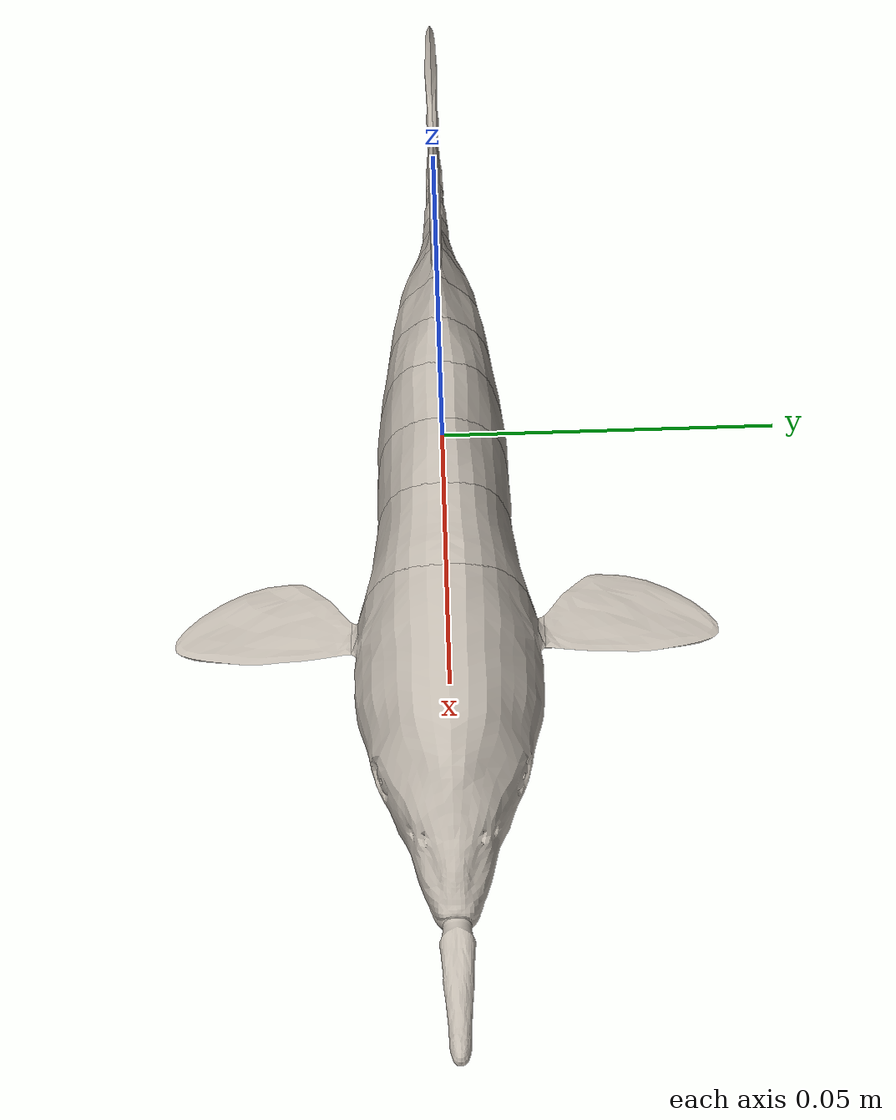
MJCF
<mujoco model="Gnathonemus_petersii">
  <compiler angle="degree" meshdir="assets/meshes" texturedir="assets/textures" inertiafromgeom="false" autolimits="true" />
  <option timestep="0.001" gravity="0 0 -9.81" density="1000" viscosity="0.001" integrator="implicitfast" solver="Newton" iterations="30" />
  <size nuser_body="1" />
  <visual>
    <global offwidth="1920" offheight="1080" azimuth="90" elevation="-8" />
    <quality shadowsize="2048" offsamples="4" />
    <headlight ambient="0.45 0.45 0.45" diffuse="0.65 0.65 0.65" specular="0.15 0.15 0.15" />
    <rgba haze="0.05 0.16 0.19 1" />
    <map znear="0.002" zfar="20" fogstart="1" fogend="5" />
  </visual>
  <statistic center="0 0 0" extent="0.25" meansize="0.008" />
  <asset>
    <texture name="water" type="skybox" builtin="gradient" rgb1="0.025 0.1 0.13" rgb2="0.12 0.26 0.28" width="512" height="3072" />
    <texture name="diffuse" type="2d" file="fish_atlas.png" />
    <material name="fish_material" texture="diffuse" specular="0.12" shininess="0.2" reflectance="0.03" />
    <mesh name="body_00_head" file="body_00_head.obj" smoothnormal="true" />
    <mesh name="body_01" file="body_01.obj" smoothnormal="true" />
    <mesh name="body_02" file="body_02.obj" smoothnormal="true" />
    <mesh name="body_03" file="body_03.obj" smoothnormal="true" />
    <mesh name="body_04" file="body_04.obj" smoothnormal="true" />
    <mesh name="body_05" file="body_05.obj" smoothnormal="true" />
    <mesh name="body_06" file="body_06.obj" smoothnormal="true" />
    <mesh name="body_07" file="body_07.obj" smoothnormal="true" />
    <mesh name="body_08" file="body_08.obj" smoothnormal="true" />
    <mesh name="body_09" file="body_09.obj" smoothnormal="true" />
    <mesh name="body_10" file="body_10.obj" smoothnormal="true" />
    <mesh name="body_11" file="body_11.obj" smoothnormal="true" />
    <mesh name="body_12" file="body_12.obj" smoothnormal="true" />
    <mesh name="body_13" file="body_13.obj" smoothnormal="true" />
    <mesh name="chin_0" file="chin_0.obj" smoothnormal="true" />
    <mesh name="fin_pecL_0" file="fin_pecL_0.obj" smoothnormal="true" />
    <mesh name="fin_pecR_0" file="fin_pecR_0.obj" smoothnormal="true" />
    <mesh name="fin_pelL_0" file="fin_pelL_0.obj" smoothnormal="true" />
    <mesh name="fin_pelR_0" file="fin_pelR_0.obj" smoothnormal="true" />
    <mesh name="fin_dorsal_0" file="fin_dorsal_0.obj" smoothnormal="true" />
    <mesh name="fin_anal_0" file="fin_anal_0.obj" smoothnormal="true" />
    <mesh name="fin_caudal_0" file="fin_caudal_0.obj" smoothnormal="true" />
  </asset>
  <worldbody>
    <light name="key" pos="0.1 0.4 0.5" dir="-0.2 -0.6 -1" diffuse="0.85 0.85 0.8" castshadow="true" />
    <light name="fill" pos="-0.2 -0.3 0.1" dir="0.3 0.7 -0.4" diffuse="0.5 0.6 0.65" castshadow="false" />
    <camera name="fixed_side" pos="0 0.34 0.035" xyaxes="-1 0 0 0 0 1" fovy="40" />
    <body name="body_00_head" pos="0 0 0" gravcomp="1" user="1.751050597e-05">
      <inertial pos="0.05433045629 -5.202310969e-08 -0.0004100051152" mass="0.01751050597" diaginertia="1.413400013e-06 2.398040128e-06 2.738390535e-06" quat="0.7061388412 0.7061493281 0.03688083314 -0.03688993819" />
      <freejoint name="root_free" />
      <site name="imu" size="0.001" rgba="0 0 0 0" />
      <camera name="tracking_side" mode="trackcom" pos="0 0.34 0.035" xyaxes="-1 0 0 0 0 1" fovy="40" />
      <camera name="tracking_top" mode="trackcom" pos="0 0 0.34" xyaxes="-1 0 0 0 -1 0" fovy="40" />
      <camera name="fin_closeup" mode="trackcom" pos="-0.04 0.15 0.01" xyaxes="-1 0 0 0 0 1" fovy="35" />
      <geom name="visual_body_00_head" type="mesh" mesh="body_00_head" material="fish_material" contype="0" conaffinity="0" group="1" mass="0" />
      <geom name="fluid_body_00_head" type="ellipsoid" size="0.02305520364 0.01582357285 0.01237743221" pos="0.05433045629 -5.202310969e-08 -0.0004100051152" quat="0.7061388412 0.7061493281 0.03688083314 -0.03688993819" mass="0" group="3" contype="2" conaffinity="1" rgba="0.2 0.7 0.8 0.25" fluidshape="ellipsoid" fluidcoef="0.5 0.08 1.5 1 1" />
      <body name="body_01" pos="0.05887063823 0 -0.0005302909266" gravcomp="1" user="8.150289643e-06">
        <inertial pos="-0.02646965524 -1.88852711e-07 0.001001682928" mass="0.008150289643" diaginertia="3.886249974e-07 8.349658073e-07 9.171498856e-07" quat="0.7185434633 8.266756421e-05 -0.6954820444 -0.0001024729196" />
        <joint name="j_body_01_yaw" type="hinge" axis="0 0 1" range="-0.7161972439 0.7161972439" stiffness="0.003" damping="0.00015" armature="1e-08" solreflimit="0.003 1" margin="1e-05" />
        <joint name="j_body_01_pitch" type="hinge" axis="0 1 0" range="-0.5 0.5" stiffness="0.003" damping="0.00015" armature="1e-08" solreflimit="0.003 1" margin="1e-05" />
        <geom name="visual_body_01" type="mesh" mesh="body_01" material="fish_material" contype="0" conaffinity="0" group="1" mass="0" />
        <geom name="fluid_body_01" type="ellipsoid" size="0.02045076566 0.01201727213 0.009695201977" pos="-0.02646965524 -1.88852711e-07 0.001001682928" quat="0.7185434633 8.266756421e-05 -0.6954820444 -0.0001024729196" mass="0" group="3" contype="2" conaffinity="1" rgba="0.2 0.7 0.8 0.25" fluidshape="ellipsoid" fluidcoef="0.5 0.08 1.5 1 1" />
        <body name="body_02" pos="-0.009465827681 0 0.000690746208" gravcomp="1" user="7.116031402e-06">
          <inertial pos="-0.0298238466 3.226461012e-07 0.0001999979644" mass="0.007116031402" diaginertia="2.728979815e-07 8.100001986e-07 8.594840869e-07" quat="0.0001143331161 -0.7059705756 7.111777698e-05 0.7082411512" />
          <joint name="j_body_02_yaw" type="hinge" axis="0 0 1" range="-0.7161972439 0.7161972439" stiffness="0.003" damping="0.00015" armature="1e-08" solreflimit="0.003 1" margin="1e-05" />
          <joint name="j_body_02_pitch" type="hinge" axis="0 1 0" range="-0.5 0.5" stiffness="0.003" damping="0.00015" armature="1e-08" solreflimit="0.003 1" margin="1e-05" />
          <geom name="visual_body_02" type="mesh" mesh="body_02" material="fish_material" contype="0" conaffinity="0" group="1" mass="0" />
          <geom name="fluid_body_02" type="ellipsoid" size="0.02215057303 0.01064232166 0.008859441792" pos="-0.0298238466 3.226461012e-07 0.0001999979644" quat="0.0001143331161 -0.7059705756 7.111777698e-05 0.7082411512" mass="0" group="3" contype="2" conaffinity="1" rgba="0.2 0.7 0.8 0.25" fluidshape="ellipsoid" fluidcoef="0.5 0.08 1.5 1 1" />
          <body name="body_03" pos="-0.009465827681 0 0.0001540624832" gravcomp="1" user="7.020405512e-06">
            <inertial pos="-0.03205427488 -3.778255366e-09 5.361308894e-05" mass="0.007020405512" diaginertia="2.623823513e-07 8.232361381e-07 8.819704055e-07" quat="0.7105558958 1.299922983e-06 -0.7036407599 1.878005684e-06" />
            <joint name="j_body_03_yaw" type="hinge" axis="0 0 1" range="-0.7161972439 0.7161972439" stiffness="0.003" damping="0.00015" armature="1e-08" solreflimit="0.003 1" margin="1e-05" />
            <joint name="j_body_03_pitch" type="hinge" axis="0 1 0" range="-0.5 0.5" stiffness="0.003" damping="0.00015" armature="1e-08" solreflimit="0.003 1" margin="1e-05" />
            <geom name="visual_body_03" type="mesh" mesh="body_03" material="fish_material" contype="0" conaffinity="0" group="1" mass="0" />
            <geom name="fluid_body_03" type="ellipsoid" size="0.02266708185 0.0106935104 0.008515870905" pos="-0.03205427488 -3.778255366e-09 5.361308894e-05" quat="0.7105558958 1.299922983e-06 -0.7036407599 1.878005684e-06" mass="0" group="3" contype="2" conaffinity="1" rgba="0.2 0.7 0.8 0.25" fluidshape="ellipsoid" fluidcoef="0.5 0.08 1.5 1 1" />
            <body name="body_04" pos="-0.009465827681 0 3.856462767e-06" gravcomp="1" user="5.995996774e-06">
              <inertial pos="-0.03344516657 2.048546465e-15 -0.0003335497231" mass="0.005995996774" diaginertia="2.008002115e-07 6.858668759e-07 7.366033597e-07" quat="7.141665434e-13 -0.7061969079 1.072666707e-12 0.7080154852" />
              <joint name="j_body_04_yaw" type="hinge" axis="0 0 1" range="-0.7161972439 0.7161972439" stiffness="0.003" damping="0.00015" armature="1e-08" solreflimit="0.003 1" margin="1e-05" />
              <joint name="j_body_04_pitch" type="hinge" axis="0 1 0" range="-0.5 0.5" stiffness="0.003" damping="0.00015" armature="1e-08" solreflimit="0.003 1" margin="1e-05" />
              <geom name="visual_body_04" type="mesh" mesh="body_04" material="fish_material" contype="0" conaffinity="0" group="1" mass="0" />
              <geom name="fluid_body_04" type="ellipsoid" size="0.02256920534 0.01024094384 0.007910012584" pos="-0.03344516657 2.048546465e-15 -0.0003335497231" quat="7.141665434e-13 -0.7061969079 1.072666707e-12 0.7080154852" mass="0" group="3" contype="2" conaffinity="1" rgba="0.2 0.7 0.8 0.25" fluidshape="ellipsoid" fluidcoef="0.5 0.08 1.5 1 1" />
              <body name="body_05" pos="-0.009465827681 0 -6.182555981e-05" gravcomp="1" user="4.818897285e-06">
                <inertial pos="-0.0343101073 -1.132711005e-19 -0.0004289549327" mass="0.004818897285" diaginertia="1.36552486e-07 4.775575144e-07 5.07978662e-07" quat="2.454850954e-16 0.7096492864 2.062958452e-16 -0.7045551009" />
                <joint name="j_body_05_yaw" type="hinge" axis="0 0 1" range="-0.7161972439 0.7161972439" stiffness="0.003" damping="0.00015" armature="1e-08" solreflimit="0.003 1" margin="1e-05" />
                <joint name="j_body_05_pitch" type="hinge" axis="0 1 0" range="-0.5 0.5" stiffness="0.003" damping="0.00015" armature="1e-08" solreflimit="0.003 1" margin="1e-05" />
                <geom name="visual_body_05" type="mesh" mesh="body_05" material="fish_material" contype="0" conaffinity="0" group="1" mass="0" />
                <geom name="fluid_body_05" type="ellipsoid" size="0.02098678161 0.009307222978 0.007420240648" pos="-0.0343101073 -1.132711005e-19 -0.0004289549327" quat="2.454850954e-16 0.7096492864 2.062958452e-16 -0.7045551009" mass="0" group="3" contype="2" conaffinity="1" rgba="0.2 0.7 0.8 0.25" fluidshape="ellipsoid" fluidcoef="0.5 0.08 1.5 1 1" />
                <body name="body_06" pos="-0.009465827681 0 0.0002242333971" gravcomp="1" user="3.596769246e-06">
                  <inertial pos="-0.03507127701 -3.803389518e-14 -0.0007418514269" mass="0.003596769246" diaginertia="8.133801511e-08 2.99593817e-07 3.003556649e-07" quat="-0.7029511089 6.967924916e-11 0.7112381729 7.711114057e-11" />
                  <joint name="j_body_06_yaw" type="hinge" axis="0 0 1" range="-0.7161972439 0.7161972439" stiffness="0.003" damping="0.00015" armature="1e-08" solreflimit="0.003 1" margin="1e-05" />
                  <joint name="j_body_06_pitch" type="hinge" axis="0 1 0" range="-0.5 0.5" stiffness="0.003" damping="0.00015" armature="1e-08" solreflimit="0.003 1" margin="1e-05" />
                  <geom name="visual_body_06" type="mesh" mesh="body_06" material="fish_material" contype="0" conaffinity="0" group="1" mass="0" />
                  <geom name="fluid_body_06" type="ellipsoid" size="0.01898605671 0.007554138311 0.007483711194" pos="-0.03507127701 -3.803389518e-14 -0.0007418514269" quat="-0.7029511089 6.967924916e-11 0.7112381729 7.711114057e-11" mass="0" group="3" contype="2" conaffinity="1" rgba="0.2 0.7 0.8 0.25" fluidshape="ellipsoid" fluidcoef="0.5 0.08 1.5 1 1" />
                  <body name="body_07" pos="-0.009465827681 0 -0.0003675776473" gravcomp="1" user="1.869382097e-06">
                    <inertial pos="-0.03519539653 -2.293844458e-14 -0.0009293040176" mass="0.001869382097" diaginertia="2.621353741e-08 1.143079802e-07 1.154043148e-07" quat="-0.5016990444 0.5016990448 0.4982951619 0.4982951624" />
                    <joint name="j_body_07_yaw" type="hinge" axis="0 0 1" range="-1.432394488 1.432394488" stiffness="0.003" damping="0.00015" armature="1e-08" solreflimit="0.003 1" margin="1e-05" />
                    <joint name="j_body_07_pitch" type="hinge" axis="0 1 0" range="-0.5 0.5" stiffness="0.003" damping="0.00015" armature="1e-08" solreflimit="0.003 1" margin="1e-05" />
                    <geom name="visual_body_07" type="mesh" mesh="body_07" material="fish_material" contype="0" conaffinity="0" group="1" mass="0" />
                    <geom name="fluid_body_07" type="ellipsoid" size="0.01649688116 0.006043392445 0.00579570939" pos="-0.03519539653 -2.293844458e-14 -0.0009293040176" quat="-0.5016990444 0.5016990448 0.4982951619 0.4982951624" mass="0" group="3" contype="2" conaffinity="1" rgba="0.2 0.7 0.8 0.25" fluidshape="ellipsoid" fluidcoef="0.5 0.08 1.5 1 1" />
                    <body name="body_08" pos="-0.009465827681 0 -0.0003346977227" gravcomp="1" user="9.94307641e-07">
                      <inertial pos="-0.03426692894 -1.79904318e-09 -0.001426954164" mass="0.000994307641" diaginertia="1.037234256e-08 3.680162218e-08 4.071798345e-08" quat="-0.497875401 0.4978740671 0.5021167593 0.5021157819" />
                      <joint name="j_body_08_yaw" type="hinge" axis="0 0 1" range="-1.432394488 1.432394488" stiffness="0.003" damping="0.00015" armature="1e-08" solreflimit="0.003 1" margin="1e-05" />
                      <joint name="j_body_08_pitch" type="hinge" axis="0 1 0" range="-0.5 0.5" stiffness="0.003" damping="0.00015" armature="1e-08" solreflimit="0.003 1" margin="1e-05" />
                      <geom name="visual_body_08" type="mesh" mesh="body_08" material="fish_material" contype="0" conaffinity="0" group="1" mass="0" />
                      <geom name="fluid_body_08" type="ellipsoid" size="0.01299342888 0.005993852249 0.004028939515" pos="-0.03426692894 -1.79904318e-09 -0.001426954164" quat="-0.497875401 0.4978740671 0.5021167593 0.5021157819" mass="0" group="3" contype="2" conaffinity="1" rgba="0.2 0.7 0.8 0.25" fluidshape="ellipsoid" fluidcoef="0.5 0.08 1.5 1 1" />
                      <body name="body_09" pos="-0.009465827681 0 5.730831849e-05" gravcomp="1" user="3.82977846e-07">
                        <inertial pos="-0.03323258484 -1.438445679e-07 -0.002354940175" mass="0.000382977846" diaginertia="2.490067954e-09 5.690010661e-09 7.024609045e-09" quat="-0.480122045 0.4800423084 0.519150332 0.5191581039" />
                        <joint name="j_body_09_yaw" type="hinge" axis="0 0 1" range="-1.432394488 1.432394488" stiffness="0.003" damping="0.00015" armature="1e-08" solreflimit="0.003 1" margin="1e-05" />
                        <joint name="j_body_09_pitch" type="hinge" axis="0 1 0" range="-0.5 0.5" stiffness="0.003" damping="0.00015" armature="1e-08" solreflimit="0.003 1" margin="1e-05" />
                        <geom name="visual_body_09" type="mesh" mesh="body_09" material="fish_material" contype="0" conaffinity="0" group="1" mass="0" />
                        <geom name="fluid_body_09" type="ellipsoid" size="0.008169685099 0.004996661798 0.002746391425" pos="-0.03323258484 -1.438445679e-07 -0.002354940175" quat="-0.480122045 0.4800423084 0.519150332 0.5191581039" mass="0" group="3" contype="2" conaffinity="1" rgba="0.2 0.7 0.8 0.25" fluidshape="ellipsoid" fluidcoef="0.5 0.08 1.5 1 1" />
                        <body name="body_10" pos="-0.009465827681 0 -5.829593004e-05" gravcomp="1" user="1.790268535e-07">
                          <inertial pos="-0.0306867704 -1.667605304e-07 -0.00232905417" mass="0.0001790268535" diaginertia="6.622097277e-10 1.490119071e-09 1.834180271e-09" quat="0.532272921 0.5323594828 0.4654538597 -0.4654370237" />
                          <joint name="j_body_10_yaw" type="hinge" axis="0 0 1" range="-1.432394488 1.432394488" stiffness="0.003" damping="0.00015" armature="1e-08" solreflimit="0.003 1" margin="1e-05" />
                          <joint name="j_body_10_pitch" type="hinge" axis="0 1 0" range="-0.5 0.5" stiffness="0.003" damping="0.00015" armature="1e-08" solreflimit="0.003 1" margin="1e-05" />
                          <geom name="visual_body_10" type="mesh" mesh="body_10" material="fish_material" contype="0" conaffinity="0" group="1" mass="0" />
                          <geom name="fluid_body_10" type="ellipsoid" size="0.006097085014 0.00374859376 0.002107782885" pos="-0.0306867704 -1.667605304e-07 -0.00232905417" quat="0.532272921 0.5323594828 0.4654538597 -0.4654370237" mass="0" group="3" contype="2" conaffinity="1" rgba="0.2 0.7 0.8 0.25" fluidshape="ellipsoid" fluidcoef="0.5 0.08 1.5 1 1" />
                          <body name="body_11" pos="-0.009465827681 0 -0.0009090979917" gravcomp="1" user="4.695746255e-08">
                            <inertial pos="-0.0252896315 -6.599013903e-07 -0.001447020597" mass="4.695746255e-05" diaginertia="4.743624159e-11 2.615651723e-10 2.705280735e-10" quat="-0.0006662570038 0.686860154 0.0003640923782 0.7267892077" />
                            <joint name="j_body_11_yaw" type="hinge" axis="0 0 1" range="-1.432394488 1.432394488" stiffness="0.003" damping="0.00015" armature="1e-08" solreflimit="0.003 1" margin="1e-05" />
                            <joint name="j_body_11_pitch" type="hinge" axis="0 1 0" range="-0.5 0.5" stiffness="0.003" damping="0.00015" armature="1e-08" solreflimit="0.003 1" margin="1e-05" />
                            <geom name="visual_body_11" type="mesh" mesh="body_11" material="fish_material" contype="0" conaffinity="0" group="1" mass="0" />
                            <geom name="fluid_body_11" type="ellipsoid" size="0.005079663466 0.001732821971 0.001431191147" pos="-0.0252896315 -6.599013903e-07 -0.001447020597" quat="-0.0006662570038 0.686860154 0.0003640923782 0.7267892077" mass="0" group="3" contype="2" conaffinity="1" rgba="0.2 0.7 0.8 0.25" fluidshape="ellipsoid" fluidcoef="0.5 0.08 1.5 1 1" />
                            <body name="body_12" pos="-0.009465827681 0 -0.000770449354" gravcomp="1" user="6.148064481e-08">
                              <inertial pos="-0.01844640396 1.198635425e-07 -0.0007118306528" mass="6.148064481e-05" diaginertia="8.722189704e-11 3.183150102e-10 3.429766078e-10" quat="-0.4912769297 0.4912329597 0.5086680546 0.5085213544" />
                              <joint name="j_body_12_yaw" type="hinge" axis="0 0 1" range="-0.7161972439 0.7161972439" stiffness="0.003" damping="0.00015" armature="1e-08" solreflimit="0.003 1" margin="1e-05" />
                              <joint name="j_body_12_pitch" type="hinge" axis="0 1 0" range="-0.5 0.5" stiffness="0.003" damping="0.00015" armature="1e-08" solreflimit="0.003 1" margin="1e-05" />
                              <geom name="visual_body_12" type="mesh" mesh="body_12" material="fish_material" contype="0" conaffinity="0" group="1" mass="0" />
                              <geom name="fluid_body_12" type="ellipsoid" size="0.004831512615 0.002132965392 0.001594961509" pos="-0.01844640396 1.198635425e-07 -0.0007118306528" quat="-0.4912769297 0.4912329597 0.5086680546 0.5085213544" mass="0" group="3" contype="2" conaffinity="1" rgba="0.2 0.7 0.8 0.25" fluidshape="ellipsoid" fluidcoef="0.5 0.08 1.5 1 1" />
                              <body name="body_13" pos="-0.009465827681 0 -0.0006057894079" gravcomp="1" user="1.698417528e-08">
                                <inertial pos="-0.01097203058 -6.793641791e-07 -0.0003054033552" mass="1.698417528e-05" diaginertia="9.722480706e-12 1.041766591e-10 1.107841176e-10" quat="-0.0001018389806 0.7118864272 0.0001630196 -0.7022945805" />
                                <joint name="j_body_13_yaw" type="hinge" axis="0 0 1" range="-0.7161972439 0.7161972439" stiffness="0.003" damping="0.00015" armature="1e-08" solreflimit="0.003 1" margin="1e-05" />
                                <joint name="j_body_13_pitch" type="hinge" axis="0 1 0" range="-0.5 0.5" stiffness="0.003" damping="0.00015" armature="1e-08" solreflimit="0.003 1" margin="1e-05" />
                                <geom name="visual_body_13" type="mesh" mesh="body_13" material="fish_material" contype="0" conaffinity="0" group="1" mass="0" />
                                <geom name="fluid_body_13" type="ellipsoid" size="0.005496382812 0.00155038678 0.0006771398091" pos="-0.01097203058 -6.793641791e-07 -0.0003054033552" quat="-0.0001018389806 0.7118864272 0.0001630196 -0.7022945805" mass="0" group="3" contype="2" conaffinity="1" rgba="0.2 0.7 0.8 0.25" fluidshape="ellipsoid" fluidcoef="0.5 0.08 1.5 1 1" />
                                <body name="fin_caudal_0" pos="-0.01131813353 -1.03726496e-06 -0.000199921905" gravcomp="1" user="9.155604473e-07">
                                  <inertial pos="-0.01611033024 9.545862663e-07 -0.001728391827" mass="0.0009155604473" diaginertia="6.212937076e-08 7.596865347e-08 1.376586241e-07" quat="0.5332734472 0.5332822757 0.4643439161 -0.4643427317" />
                                  <joint name="j_fin_caudal_0" type="hinge" axis="0 0 1" range="-12 12" stiffness="1e-06" damping="2e-07" armature="1e-08" solreflimit="0.003 1" margin="1e-05" />
                                  <geom name="visual_fin_caudal_0" type="mesh" mesh="fin_caudal_0" material="fish_material" contype="0" conaffinity="0" group="1" mass="0" />
                                  <geom name="fluid_fin_caudal_0" type="ellipsoid" size="0.01691999659 0.00154634635 0.01865653321" pos="-0.01704257743 1.03726496e-06 -0.002072843508" quat="1 0 0 0" mass="0" group="3" contype="2" conaffinity="1" rgba="0.2 0.7 0.8 0.25" fluidshape="ellipsoid" fluidcoef="1 0.05 1.5 1 1" />
                                </body>
                              </body>
                            </body>
                          </body>
                        </body>
                      </body>
                      <body name="fin_dorsal_0" pos="-0.03103343925 0 0.0137416602" gravcomp="1" user="3.769774365e-07">
                        <inertial pos="0.006599425733 1.848154089e-08 0.007501172675" mass="0.0003769774365" diaginertia="5.287266989e-09 2.560325135e-08 3.076877448e-08" quat="0.6870459631 0.6870374261 -0.1672531266 0.1672537333" />
                        <joint name="j_fin_dorsal_0" type="hinge" axis="1 0 0" range="-3 3" stiffness="1e-06" damping="2e-07" armature="1e-08" solreflimit="0.003 1" margin="1e-05" />
                        <geom name="visual_fin_dorsal_0" type="mesh" mesh="fin_dorsal_0" material="fish_material" contype="0" conaffinity="0" group="1" mass="0" />
                        <geom name="fluid_fin_dorsal_0" type="ellipsoid" size="0.02451581322 0.0008980032871 0.01468905801" pos="0.0008653688767 0 0.002623496016" quat="1 0 0 0" mass="0" group="3" contype="2" conaffinity="1" rgba="0.2 0.7 0.8 0.25" fluidshape="ellipsoid" fluidcoef="1 0.05 1.5 1 1" />
                      </body>
                      <body name="fin_anal_0" pos="-0.03097065109 0 -0.01437913982" gravcomp="1" user="3.193494139e-07">
                        <inertial pos="0.007649688739 7.91000006e-13 -0.005949484262" mass="0.0003193494139" diaginertia="3.573705662e-09 3.16650348e-08 3.517186249e-08" quat="-0.6951139049 0.6951139051 -0.1296790617 -0.1296790618" />
                        <joint name="j_fin_anal_0" type="hinge" axis="1 0 0" range="-3 3" stiffness="1e-06" damping="2e-07" armature="1e-08" solreflimit="0.003 1" margin="1e-05" />
                        <geom name="visual_fin_anal_0" type="mesh" mesh="fin_anal_0" material="fish_material" contype="0" conaffinity="0" group="1" mass="0" />
                        <geom name="fluid_fin_anal_0" type="ellipsoid" size="0.02410721639 0.00100821536 0.01201683446" pos="0.0003939838916 0 -0.00421525334" quat="1 0 0 0" mass="0" group="3" contype="2" conaffinity="1" rgba="0.2 0.7 0.8 0.25" fluidshape="ellipsoid" fluidcoef="1 0.05 1.5 1 1" />
                      </body>
                    </body>
                  </body>
                </body>
              </body>
            </body>
            <body name="fin_pelL_0" pos="-0.02356241998 0.005311759418 -0.01847256304" gravcomp="1" user="4.380997601e-08">
              <inertial pos="0.001036122593 0.002413386376 -0.00282880407" mass="4.380997601e-05" diaginertia="2.480232811e-10 3.710968113e-10 5.886572745e-10" quat="0.7537088161 -0.3163643299 -0.1800264296 -0.5471993383" />
              <joint name="j_fin_pelL_0" type="hinge" axis="1 0 0" range="-30 30" stiffness="1e-06" damping="2e-07" armature="1e-08" solreflimit="0.003 1" margin="1e-05" />
              <geom name="visual_fin_pelL_0" type="mesh" mesh="fin_pelL_0" material="fish_material" contype="0" conaffinity="0" group="1" mass="0" />
              <geom name="fluid_fin_pelL_0" type="ellipsoid" size="0.007967639249 0.004376072437 0.003779521212" pos="0.0002042986444 0.001924491258 -0.003779520605" quat="1 0 0 0" mass="0" group="3" contype="2" conaffinity="1" rgba="0.2 0.7 0.8 0.25" fluidshape="ellipsoid" fluidcoef="1 0.05 1.5 1 1" />
            </body>
            <body name="fin_pelR_0" pos="-0.02356241998 -0.005311759418 -0.01847256304" gravcomp="1" user="4.363937957e-08">
              <inertial pos="0.001028803318 -0.002417660382 -0.00283168391" mass="4.363937957e-05" diaginertia="2.474376844e-10 3.681632669e-10 5.852520334e-10" quat="-0.5500390473 -0.1813832809 -0.3156628284 0.7516076973" />
              <joint name="j_fin_pelR_0" type="hinge" axis="1 0 0" range="-30 30" stiffness="1e-06" damping="2e-07" armature="1e-08" solreflimit="0.003 1" margin="1e-05" />
              <geom name="visual_fin_pelR_0" type="mesh" mesh="fin_pelR_0" material="fish_material" contype="0" conaffinity="0" group="1" mass="0" />
              <geom name="fluid_fin_pelR_0" type="ellipsoid" size="0.007967639249 0.004376072437 0.003779521212" pos="0.0002042986444 -0.001924491258 -0.003779520605" quat="1 0 0 0" mass="0" group="3" contype="2" conaffinity="1" rgba="0.2 0.7 0.8 0.25" fluidshape="ellipsoid" fluidcoef="1 0.05 1.5 1 1" />
            </body>
          </body>
        </body>
      </body>
      <body name="chin_0" pos="0.08216066029 0 -0.009168913949" gravcomp="1" user="1.641578745e-07">
        <inertial pos="0.006579868855 3.598938852e-13 -0.0008972297758" mass="0.0001641578745" diaginertia="2.509158524e-10 4.336849719e-09 4.361927269e-09" quat="0.9972259499 1.493815776e-09 0.07443389584 -1.450823189e-10" />
        <joint name="j_chin_yaw" type="hinge" axis="0 0 1" range="-45 45" stiffness="1e-06" damping="2e-07" armature="1e-08" solreflimit="0.003 1" margin="1e-05" />
        <joint name="j_chin_pitch" type="hinge" axis="0 1 0" range="-45 45" stiffness="1e-06" damping="2e-07" armature="1e-08" solreflimit="0.003 1" margin="1e-05" />
        <joint name="j_chin_roll" type="hinge" axis="1 0 0" range="-30 30" stiffness="1e-06" damping="2e-07" armature="1e-08" solreflimit="0.003 1" margin="1e-05" />
        <geom name="visual_chin_0" type="mesh" mesh="chin_0" material="fish_material" contype="0" conaffinity="0" group="1" mass="0" />
        <geom name="fluid_chin_0" type="ellipsoid" size="0.009839013219 0.002267602831 0.00274388562" pos="0.008000327979 0 -0.0007945633137" quat="1 0 0 0" mass="0" group="3" contype="2" conaffinity="1" rgba="0.2 0.7 0.8 0.25" fluidshape="ellipsoid" fluidcoef="1 0.05 1.5 1 1" />
      </body>
      <body name="fin_pecL_0" pos="0.03925798807 0.01332025823 -0.004674348288" gravcomp="1" user="2.395141753e-07">
        <inertial pos="-0.004859647568 0.011740919 0.0001386906588" mass="0.0002395141753" diaginertia="3.207441003e-09 8.559431017e-09 1.172745599e-08" quat="0.03127737669 0.6946003012 0.7174839304 -0.04205896939" />
        <joint name="j_fin_pecL_0_abduct" type="hinge" axis="1 0 0" range="-30 30" stiffness="1e-06" damping="2e-07" armature="1e-08" solreflimit="0.003 1" margin="1e-05" />
        <joint name="j_fin_pecL_0_protract" type="hinge" axis="0 0 1" range="-25 25" stiffness="1e-06" damping="2e-07" armature="1e-08" solreflimit="0.003 1" margin="1e-05" />
        <joint name="j_fin_pecL_0_rotate" type="hinge" axis="0 1 0" range="-15 15" stiffness="1e-06" damping="2e-07" armature="1e-08" solreflimit="0.003 1" margin="1e-05" />
        <geom name="visual_fin_pecL_0" type="mesh" mesh="fin_pecL_0" material="fish_material" contype="0" conaffinity="0" group="1" mass="0" />
        <geom name="fluid_fin_pecL_0" type="ellipsoid" size="0.007505925372 0.0122783361 0.001849383814" pos="-0.005422079671 0.01227833575 5.972944828e-05" quat="1 0 0 0" mass="0" group="3" contype="2" conaffinity="1" rgba="0.2 0.7 0.8 0.25" fluidshape="ellipsoid" fluidcoef="1 0.05 1.5 1 1" />
      </body>
      <body name="fin_pecR_0" pos="0.03925798807 -0.01332025823 -0.004674348288" gravcomp="1" user="2.39440771e-07">
        <inertial pos="-0.004860645665 -0.01174420057 0.0001384312749" mass="0.000239440771" diaginertia="3.20674888e-09 8.550787002e-09 1.17181506e-08" quat="-0.6947546063 -0.03130070183 -0.04205261219 0.7173338699" />
        <joint name="j_fin_pecR_0_abduct" type="hinge" axis="1 0 0" range="-30 30" stiffness="1e-06" damping="2e-07" armature="1e-08" solreflimit="0.003 1" margin="1e-05" />
        <joint name="j_fin_pecR_0_protract" type="hinge" axis="0 0 1" range="-25 25" stiffness="1e-06" damping="2e-07" armature="1e-08" solreflimit="0.003 1" margin="1e-05" />
        <joint name="j_fin_pecR_0_rotate" type="hinge" axis="0 1 0" range="-15 15" stiffness="1e-06" damping="2e-07" armature="1e-08" solreflimit="0.003 1" margin="1e-05" />
        <geom name="visual_fin_pecR_0" type="mesh" mesh="fin_pecR_0" material="fish_material" contype="0" conaffinity="0" group="1" mass="0" />
        <geom name="fluid_fin_pecR_0" type="ellipsoid" size="0.007505925372 0.0122783361 0.001849383814" pos="-0.005422079671 -0.01227833575 5.972944828e-05" quat="1 0 0 0" mass="0" group="3" contype="2" conaffinity="1" rgba="0.2 0.7 0.8 0.25" fluidshape="ellipsoid" fluidcoef="1 0.05 1.5 1 1" />
      </body>
    </body>
  </worldbody>
  <actuator>
    <position name="a_j_body_01_yaw" joint="j_body_01_yaw" kp="0.02" kv="0.0004" ctrlrange="-0.0125 0.0125" forcerange="-0.02 0.02" />
    <position name="a_j_body_01_pitch" joint="j_body_01_pitch" kp="0.02" kv="0.0004" ctrlrange="-0.00872664626 0.00872664626" forcerange="-0.02 0.02" />
    <position name="a_j_body_02_yaw" joint="j_body_02_yaw" kp="0.02" kv="0.0004" ctrlrange="-0.0125 0.0125" forcerange="-0.02 0.02" />
    <position name="a_j_body_02_pitch" joint="j_body_02_pitch" kp="0.02" kv="0.0004" ctrlrange="-0.00872664626 0.00872664626" forcerange="-0.02 0.02" />
    <position name="a_j_body_03_yaw" joint="j_body_03_yaw" kp="0.02" kv="0.0004" ctrlrange="-0.0125 0.0125" forcerange="-0.02 0.02" />
    <position name="a_j_body_03_pitch" joint="j_body_03_pitch" kp="0.02" kv="0.0004" ctrlrange="-0.00872664626 0.00872664626" forcerange="-0.02 0.02" />
    <position name="a_j_body_04_yaw" joint="j_body_04_yaw" kp="0.02" kv="0.0004" ctrlrange="-0.0125 0.0125" forcerange="-0.02 0.02" />
    <position name="a_j_body_04_pitch" joint="j_body_04_pitch" kp="0.02" kv="0.0004" ctrlrange="-0.00872664626 0.00872664626" forcerange="-0.02 0.02" />
    <position name="a_j_body_05_yaw" joint="j_body_05_yaw" kp="0.02" kv="0.0004" ctrlrange="-0.0125 0.0125" forcerange="-0.02 0.02" />
    <position name="a_j_body_05_pitch" joint="j_body_05_pitch" kp="0.02" kv="0.0004" ctrlrange="-0.00872664626 0.00872664626" forcerange="-0.02 0.02" />
    <position name="a_j_body_06_yaw" joint="j_body_06_yaw" kp="0.02" kv="0.0004" ctrlrange="-0.0125 0.0125" forcerange="-0.02 0.02" />
    <position name="a_j_body_06_pitch" joint="j_body_06_pitch" kp="0.02" kv="0.0004" ctrlrange="-0.00872664626 0.00872664626" forcerange="-0.02 0.02" />
    <position name="a_j_body_07_yaw" joint="j_body_07_yaw" kp="0.02" kv="0.0004" ctrlrange="-0.025 0.025" forcerange="-0.02 0.02" />
    <position name="a_j_body_07_pitch" joint="j_body_07_pitch" kp="0.02" kv="0.0004" ctrlrange="-0.00872664626 0.00872664626" forcerange="-0.02 0.02" />
    <position name="a_j_body_08_yaw" joint="j_body_08_yaw" kp="0.02" kv="0.0004" ctrlrange="-0.025 0.025" forcerange="-0.02 0.02" />
    <position name="a_j_body_08_pitch" joint="j_body_08_pitch" kp="0.02" kv="0.0004" ctrlrange="-0.00872664626 0.00872664626" forcerange="-0.02 0.02" />
    <position name="a_j_body_09_yaw" joint="j_body_09_yaw" kp="0.02" kv="0.0004" ctrlrange="-0.025 0.025" forcerange="-0.02 0.02" />
    <position name="a_j_body_09_pitch" joint="j_body_09_pitch" kp="0.02" kv="0.0004" ctrlrange="-0.00872664626 0.00872664626" forcerange="-0.02 0.02" />
    <position name="a_j_body_10_yaw" joint="j_body_10_yaw" kp="0.02" kv="0.0004" ctrlrange="-0.025 0.025" forcerange="-0.02 0.02" />
    <position name="a_j_body_10_pitch" joint="j_body_10_pitch" kp="0.02" kv="0.0004" ctrlrange="-0.00872664626 0.00872664626" forcerange="-0.02 0.02" />
    <position name="a_j_body_11_yaw" joint="j_body_11_yaw" kp="0.02" kv="0.0004" ctrlrange="-0.025 0.025" forcerange="-0.02 0.02" />
    <position name="a_j_body_11_pitch" joint="j_body_11_pitch" kp="0.02" kv="0.0004" ctrlrange="-0.00872664626 0.00872664626" forcerange="-0.02 0.02" />
    <position name="a_j_body_12_yaw" joint="j_body_12_yaw" kp="0.02" kv="0.0004" ctrlrange="-0.0125 0.0125" forcerange="-0.02 0.02" />
    <position name="a_j_body_12_pitch" joint="j_body_12_pitch" kp="0.02" kv="0.0004" ctrlrange="-0.00872664626 0.00872664626" forcerange="-0.02 0.02" />
    <position name="a_j_body_13_yaw" joint="j_body_13_yaw" kp="0.02" kv="0.0004" ctrlrange="-0.0125 0.0125" forcerange="-0.02 0.02" />
    <position name="a_j_body_13_pitch" joint="j_body_13_pitch" kp="0.02" kv="0.0004" ctrlrange="-0.00872664626 0.00872664626" forcerange="-0.02 0.02" />
    <position name="a_j_chin_yaw" joint="j_chin_yaw" kp="0.0004" kv="2e-06" ctrlrange="-0.7853981634 0.7853981634" forcerange="-0.02 0.02" />
    <position name="a_j_chin_pitch" joint="j_chin_pitch" kp="0.0004" kv="2e-06" ctrlrange="-0.7853981634 0.7853981634" forcerange="-0.02 0.02" />
    <position name="a_j_chin_roll" joint="j_chin_roll" kp="0.0004" kv="2e-06" ctrlrange="-0.5235987756 0.5235987756" forcerange="-0.02 0.02" />
    <position name="a_j_fin_pecL_0_abduct" joint="j_fin_pecL_0_abduct" kp="0.0004" kv="2e-06" ctrlrange="-0.5235987756 0.5235987756" forcerange="-0.02 0.02" />
    <position name="a_j_fin_pecL_0_protract" joint="j_fin_pecL_0_protract" kp="0.0004" kv="2e-06" ctrlrange="-0.436332313 0.436332313" forcerange="-0.02 0.02" />
    <position name="a_j_fin_pecL_0_rotate" joint="j_fin_pecL_0_rotate" kp="0.0004" kv="2e-06" ctrlrange="-0.2617993878 0.2617993878" forcerange="-0.02 0.02" />
    <position name="a_j_fin_pecR_0_abduct" joint="j_fin_pecR_0_abduct" kp="0.0004" kv="2e-06" ctrlrange="-0.5235987756 0.5235987756" forcerange="-0.02 0.02" />
    <position name="a_j_fin_pecR_0_protract" joint="j_fin_pecR_0_protract" kp="0.0004" kv="2e-06" ctrlrange="-0.436332313 0.436332313" forcerange="-0.02 0.02" />
    <position name="a_j_fin_pecR_0_rotate" joint="j_fin_pecR_0_rotate" kp="0.0004" kv="2e-06" ctrlrange="-0.2617993878 0.2617993878" forcerange="-0.02 0.02" />
    <position name="a_j_fin_pelL_0" joint="j_fin_pelL_0" kp="0.0004" kv="2e-06" ctrlrange="-0.5235987756 0.5235987756" forcerange="-0.02 0.02" />
    <position name="a_j_fin_pelR_0" joint="j_fin_pelR_0" kp="0.0004" kv="2e-06" ctrlrange="-0.5235987756 0.5235987756" forcerange="-0.02 0.02" />
    <position name="a_j_fin_dorsal_0" joint="j_fin_dorsal_0" kp="0.0004" kv="2e-06" ctrlrange="-0.05235987756 0.05235987756" forcerange="-0.02 0.02" />
    <position name="a_j_fin_anal_0" joint="j_fin_anal_0" kp="0.0004" kv="2e-06" ctrlrange="-0.05235987756 0.05235987756" forcerange="-0.02 0.02" />
    <position name="a_j_fin_caudal_0" joint="j_fin_caudal_0" kp="0.0004" kv="2e-06" ctrlrange="-0.2094395102 0.2094395102" forcerange="-0.02 0.02" />
  </actuator>
  <sensor>
    <jointpos name="j_body_01_yaw_pos" joint="j_body_01_yaw" />
    <jointvel name="j_body_01_yaw_vel" joint="j_body_01_yaw" />
    <jointpos name="j_body_01_pitch_pos" joint="j_body_01_pitch" />
    <jointvel name="j_body_01_pitch_vel" joint="j_body_01_pitch" />
    <jointpos name="j_body_02_yaw_pos" joint="j_body_02_yaw" />
    <jointvel name="j_body_02_yaw_vel" joint="j_body_02_yaw" />
    <jointpos name="j_body_02_pitch_pos" joint="j_body_02_pitch" />
    <jointvel name="j_body_02_pitch_vel" joint="j_body_02_pitch" />
    <jointpos name="j_body_03_yaw_pos" joint="j_body_03_yaw" />
    <jointvel name="j_body_03_yaw_vel" joint="j_body_03_yaw" />
    <jointpos name="j_body_03_pitch_pos" joint="j_body_03_pitch" />
    <jointvel name="j_body_03_pitch_vel" joint="j_body_03_pitch" />
    <jointpos name="j_body_04_yaw_pos" joint="j_body_04_yaw" />
    <jointvel name="j_body_04_yaw_vel" joint="j_body_04_yaw" />
    <jointpos name="j_body_04_pitch_pos" joint="j_body_04_pitch" />
    <jointvel name="j_body_04_pitch_vel" joint="j_body_04_pitch" />
    <jointpos name="j_body_05_yaw_pos" joint="j_body_05_yaw" />
    <jointvel name="j_body_05_yaw_vel" joint="j_body_05_yaw" />
    <jointpos name="j_body_05_pitch_pos" joint="j_body_05_pitch" />
    <jointvel name="j_body_05_pitch_vel" joint="j_body_05_pitch" />
    <jointpos name="j_body_06_yaw_pos" joint="j_body_06_yaw" />
    <jointvel name="j_body_06_yaw_vel" joint="j_body_06_yaw" />
    <jointpos name="j_body_06_pitch_pos" joint="j_body_06_pitch" />
    <jointvel name="j_body_06_pitch_vel" joint="j_body_06_pitch" />
    <jointpos name="j_body_07_yaw_pos" joint="j_body_07_yaw" />
    <jointvel name="j_body_07_yaw_vel" joint="j_body_07_yaw" />
    <jointpos name="j_body_07_pitch_pos" joint="j_body_07_pitch" />
    <jointvel name="j_body_07_pitch_vel" joint="j_body_07_pitch" />
    <jointpos name="j_body_08_yaw_pos" joint="j_body_08_yaw" />
    <jointvel name="j_body_08_yaw_vel" joint="j_body_08_yaw" />
    <jointpos name="j_body_08_pitch_pos" joint="j_body_08_pitch" />
    <jointvel name="j_body_08_pitch_vel" joint="j_body_08_pitch" />
    <jointpos name="j_body_09_yaw_pos" joint="j_body_09_yaw" />
    <jointvel name="j_body_09_yaw_vel" joint="j_body_09_yaw" />
    <jointpos name="j_body_09_pitch_pos" joint="j_body_09_pitch" />
    <jointvel name="j_body_09_pitch_vel" joint="j_body_09_pitch" />
    <jointpos name="j_body_10_yaw_pos" joint="j_body_10_yaw" />
    <jointvel name="j_body_10_yaw_vel" joint="j_body_10_yaw" />
    <jointpos name="j_body_10_pitch_pos" joint="j_body_10_pitch" />
    <jointvel name="j_body_10_pitch_vel" joint="j_body_10_pitch" />
    <jointpos name="j_body_11_yaw_pos" joint="j_body_11_yaw" />
    <jointvel name="j_body_11_yaw_vel" joint="j_body_11_yaw" />
    <jointpos name="j_body_11_pitch_pos" joint="j_body_11_pitch" />
    <jointvel name="j_body_11_pitch_vel" joint="j_body_11_pitch" />
    <jointpos name="j_body_12_yaw_pos" joint="j_body_12_yaw" />
    <jointvel name="j_body_12_yaw_vel" joint="j_body_12_yaw" />
    <jointpos name="j_body_12_pitch_pos" joint="j_body_12_pitch" />
    <jointvel name="j_body_12_pitch_vel" joint="j_body_12_pitch" />
    <jointpos name="j_body_13_yaw_pos" joint="j_body_13_yaw" />
    <jointvel name="j_body_13_yaw_vel" joint="j_body_13_yaw" />
    <jointpos name="j_body_13_pitch_pos" joint="j_body_13_pitch" />
    <jointvel name="j_body_13_pitch_vel" joint="j_body_13_pitch" />
    <jointpos name="j_chin_yaw_pos" joint="j_chin_yaw" />
    <jointvel name="j_chin_yaw_vel" joint="j_chin_yaw" />
    <jointpos name="j_chin_pitch_pos" joint="j_chin_pitch" />
    <jointvel name="j_chin_pitch_vel" joint="j_chin_pitch" />
    <jointpos name="j_chin_roll_pos" joint="j_chin_roll" />
    <jointvel name="j_chin_roll_vel" joint="j_chin_roll" />
    <jointpos name="j_fin_pecL_0_abduct_pos" joint="j_fin_pecL_0_abduct" />
    <jointvel name="j_fin_pecL_0_abduct_vel" joint="j_fin_pecL_0_abduct" />
    <jointpos name="j_fin_pecL_0_protract_pos" joint="j_fin_pecL_0_protract" />
    <jointvel name="j_fin_pecL_0_protract_vel" joint="j_fin_pecL_0_protract" />
    <jointpos name="j_fin_pecL_0_rotate_pos" joint="j_fin_pecL_0_rotate" />
    <jointvel name="j_fin_pecL_0_rotate_vel" joint="j_fin_pecL_0_rotate" />
    <jointpos name="j_fin_pecR_0_abduct_pos" joint="j_fin_pecR_0_abduct" />
    <jointvel name="j_fin_pecR_0_abduct_vel" joint="j_fin_pecR_0_abduct" />
    <jointpos name="j_fin_pecR_0_protract_pos" joint="j_fin_pecR_0_protract" />
    <jointvel name="j_fin_pecR_0_protract_vel" joint="j_fin_pecR_0_protract" />
    <jointpos name="j_fin_pecR_0_rotate_pos" joint="j_fin_pecR_0_rotate" />
    <jointvel name="j_fin_pecR_0_rotate_vel" joint="j_fin_pecR_0_rotate" />
    <jointpos name="j_fin_pelL_0_pos" joint="j_fin_pelL_0" />
    <jointvel name="j_fin_pelL_0_vel" joint="j_fin_pelL_0" />
    <jointpos name="j_fin_pelR_0_pos" joint="j_fin_pelR_0" />
    <jointvel name="j_fin_pelR_0_vel" joint="j_fin_pelR_0" />
    <jointpos name="j_fin_dorsal_0_pos" joint="j_fin_dorsal_0" />
    <jointvel name="j_fin_dorsal_0_vel" joint="j_fin_dorsal_0" />
    <jointpos name="j_fin_anal_0_pos" joint="j_fin_anal_0" />
    <jointvel name="j_fin_anal_0_vel" joint="j_fin_anal_0" />
    <jointpos name="j_fin_caudal_0_pos" joint="j_fin_caudal_0" />
    <jointvel name="j_fin_caudal_0_vel" joint="j_fin_caudal_0" />
    <framepos name="root_position" objtype="body" objname="body_00_head" />
    <framequat name="root_orientation" objtype="body" objname="body_00_head" />
    <framelinvel name="root_velocity" objtype="body" objname="body_00_head" />
    <frameangvel name="root_angular_velocity" objtype="body" objname="body_00_head" />
    <accelerometer name="imu_accelerometer" site="imu" />
    <gyro name="imu_gyro" site="imu" />
  </sensor>
  <contact>
    <exclude body1="body_00_head" body2="body_01" />
    <exclude body1="body_01" body2="body_02" />
    <exclude body1="body_02" body2="body_03" />
    <exclude body1="body_03" body2="body_04" />
    <exclude body1="body_04" body2="body_05" />
    <exclude body1="body_05" body2="body_06" />
    <exclude body1="body_06" body2="body_07" />
    <exclude body1="body_07" body2="body_08" />
    <exclude body1="body_08" body2="body_09" />
    <exclude body1="body_09" body2="body_10" />
    <exclude body1="body_10" body2="body_11" />
    <exclude body1="body_11" body2="body_12" />
    <exclude body1="body_12" body2="body_13" />
    <exclude body1="body_00_head" body2="chin_0" />
    <exclude body1="body_00_head" body2="fin_pecL_0" />
    <exclude body1="body_00_head" body2="fin_pecR_0" />
    <exclude body1="body_03" body2="fin_pelL_0" />
    <exclude body1="body_03" body2="fin_pelR_0" />
    <exclude body1="body_08" body2="fin_dorsal_0" />
    <exclude body1="body_08" body2="fin_anal_0" />
    <exclude body1="body_13" body2="fin_caudal_0" />
  </contact>
  <keyframe>
    <key name="rest" qpos="0 0 0 1 0 0 0 0 0 0 0 0 0 0 0 0 0 0 0 0 0 0 0 0 0 0 0 0 0 0 0 0 0 0 0 0 0 0 0 0 0 0 0 0 0 0 0" ctrl="0 0 0 0 0 0 0 0 0 0 0 0 0 0 0 0 0 0 0 0 0 0 0 0 0 0 0 0 0 0 0 0 0 0 0 0 0 0 0 0" />
  </keyframe>
</mujoco>
